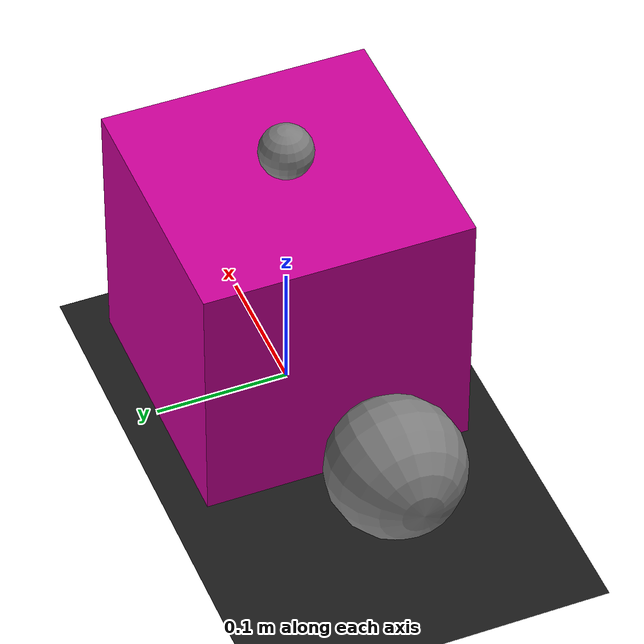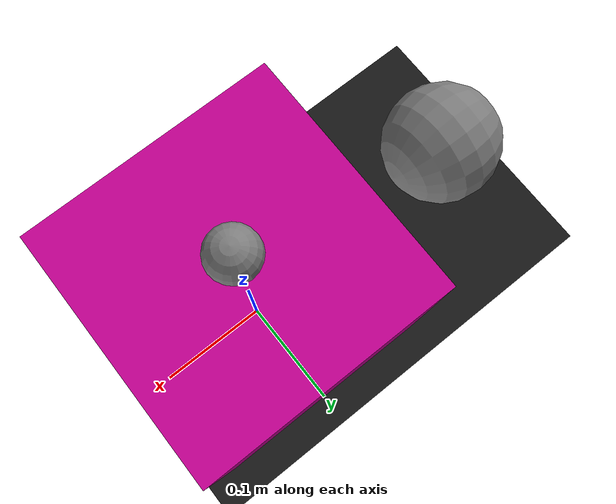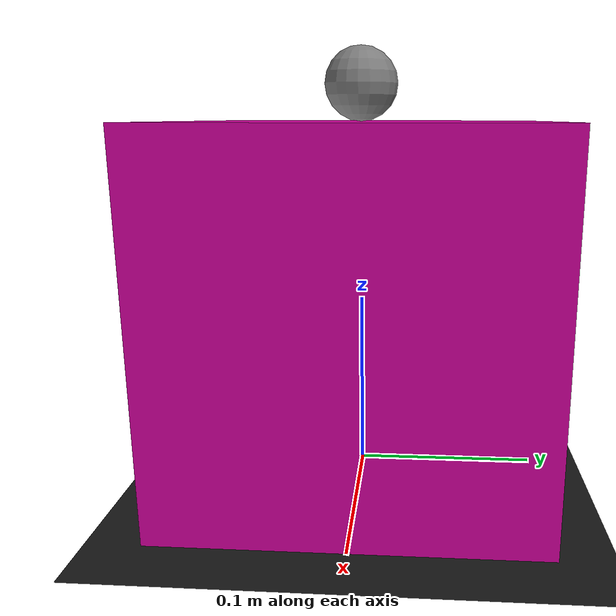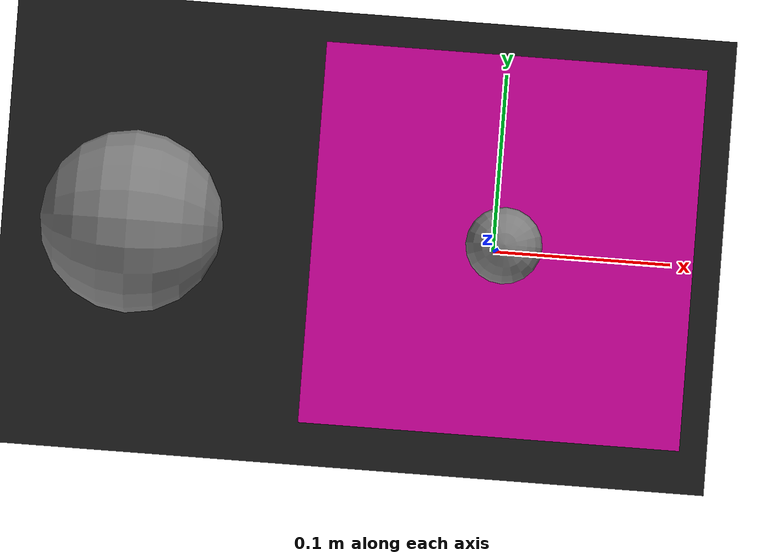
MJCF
<mujoco>
   <option integrator="RK4" timestep="0.001" >
   </option>
   <visual>
      <headlight ambient=".4 .4 .4" diffuse=".8 .8 .8" specular="0.1 0.1 0.1"/>
   </visual>
   <asset>
      <texture name="box_texture" type="2d" builtin="flat" rgb1="1. 0.8 0.8"  width="800" height="800"/>
      <material name="box_material" texture="box_texture"/>

      <texture name="skybox" type="skybox" builtin="gradient" rgb1=".5 .7 .8" rgb2="0 0 0"
               width="800" height="800" mark="random" random="0.005" markrgb="1 .8 .8"/>
      <texture name="table" type="2d" builtin="flat" rgb1=".8 .8 .8"
               width="800" height="800"/>
      <material name="table" texture="table" specular="1.0" reflectance="0.2"/>
   </asset>
   <worldbody>
      <light diffuse=".5 .5 .5" pos="0 0 3" dir="0 0 -1"/>
      <geom name="plane" type="plane" material="table" size="0 0 0.05" rgba=".1 .1 .1 1" friction="0.01 0.005 0.0001"/>
      <body name="box" pos="0 0 0.1">
         <freejoint name="box"/>
         <geom name="box" type="box" size=".1 .1 .1" rgba=".8 0 .6 1" friction = "1.0 0.005 0001" mass="1.5" material="box_material"/>
         <body name="com_offset" pos="0.0 0.0 0.12">
            <geom name="offset_mass" type="sphere" size="0.02" mass="0.5"/>
         </body>
      </body>
      <body name="pusher" pos="-0.2 0.0 0.1">
         <joint name="pusher_x" type="slide" axis="1 0 0" damping="0.0"/>
         <joint name="pusher_y" type="slide" axis="0 1 0" damping="0.0"/>
         <geom name="pusher" type="sphere" size="0.05" pos="0 0 0" euler="0.0 -90.0 0" friction="1.0 0.005 0001"/>
      </body>
   </worldbody>
   <actuator>
      <general name="start_x" joint="box"/>
      <general name="start_y" joint="box"/>
      <general name="push_angle" joint="box"/>
      <general name="push_vel" joint="box"/>
      <general name="push_time" joint="box"/>
      <general name="new_push" joint="box"/>
    </actuator>
</mujoco>
